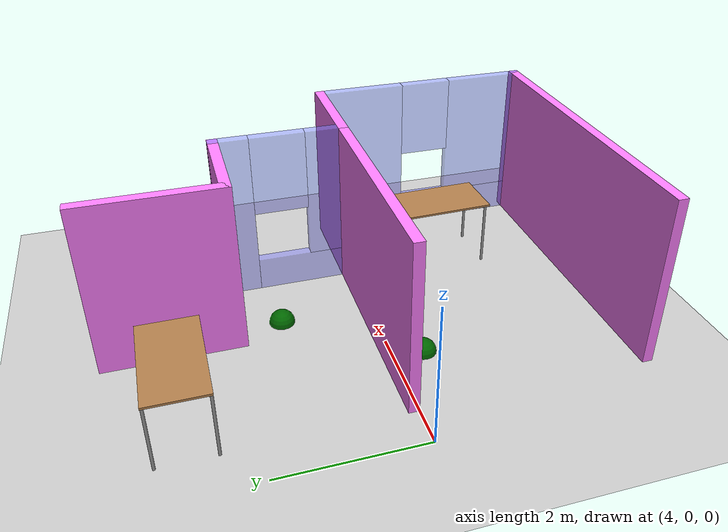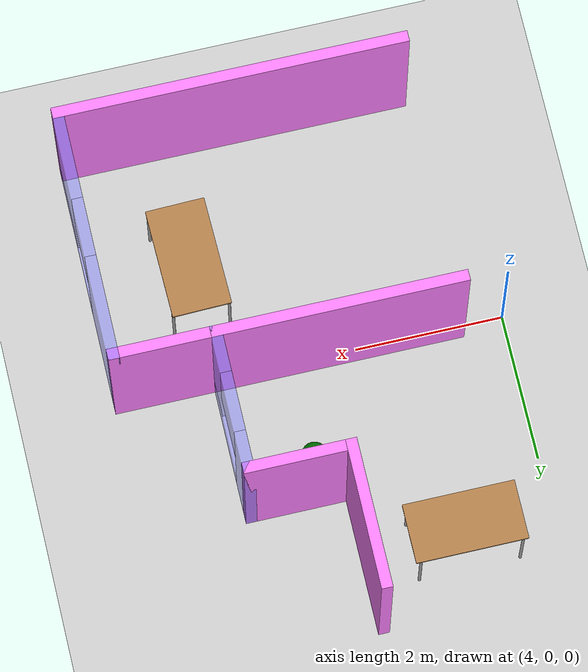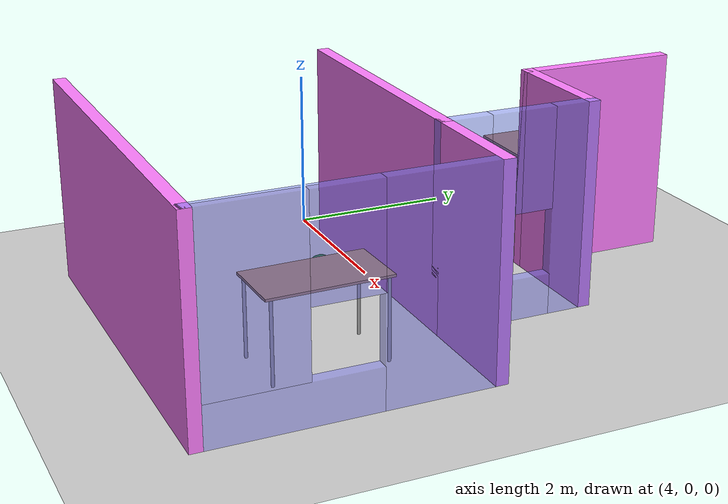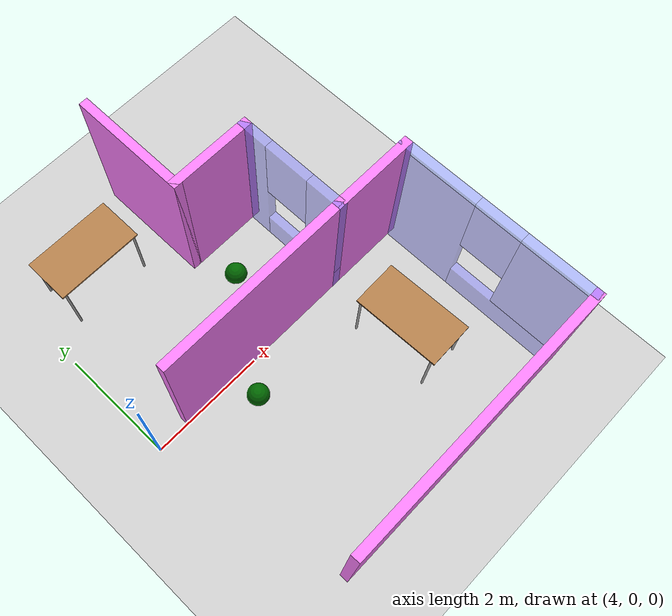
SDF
<sdf version="1.6">
 <world name="default">
  <model name="ground_plane">
   <static>1</static>
   <link name="link">
    <collision name="collision">
     <geometry><plane><normal>0 0 1</normal><size>100 100</size></plane></geometry>
     <surface>
      <contact><collide_bitmask>65535</collide_bitmask></contact>
      <friction><ode><mu>100</mu><mu2>50</mu2></ode></friction>
     </surface>
    </collision>
    <visual name="visual">
     <cast_shadows>0</cast_shadows>
     <geometry><plane><normal>0 0 1</normal><size>100 100</size></plane></geometry>
     <material>
      <script><uri>file://media/materials/scripts/gazebo.material</uri><name>Gazebo/Grey</name></script>
     </material>
    </visual>
   </link>
  </model>
  <model name="table">
   <static>1</static>
   <link name="link">
    <collision name="surface">
     <pose>0 0 1 0 -0 0</pose>
     <geometry><box><size>1.5 0.8 0.03</size></box></geometry>
     <surface><friction><ode><mu>0.6</mu><mu2>0.6</mu2></ode></friction></surface>
    </collision>
    <visual name="visual1">
     <pose>0 0 1 0 -0 0</pose>
     <geometry><box><size>1.5 0.8 0.03</size></box></geometry>
     <material>
      <script><uri>file://media/materials/scripts/gazebo.material</uri><name>Gazebo/Wood</name></script>
     </material>
    </visual>
    <collision name="front_left_leg">
     <pose>0.68 0.38 0.5 0 -0 0</pose>
     <geometry><cylinder><radius>0.02</radius><length>1</length></cylinder></geometry>
    </collision>
    <visual name="front_left_leg">
     <pose>0.68 0.38 0.5 0 -0 0</pose>
     <geometry><cylinder><radius>0.02</radius><length>1</length></cylinder></geometry>
     <material>
      <script><uri>file://media/materials/scripts/gazebo.material</uri><name>Gazebo/Grey</name></script>
     </material>
    </visual>
    <collision name="front_right_leg">
     <pose>0.68 -0.38 0.5 0 -0 0</pose>
     <geometry><cylinder><radius>0.02</radius><length>1</length></cylinder></geometry>
    </collision>
    <visual name="front_right_leg">
     <pose>0.68 -0.38 0.5 0 -0 0</pose>
     <geometry><cylinder><radius>0.02</radius><length>1</length></cylinder></geometry>
     <material>
      <script><uri>file://media/materials/scripts/gazebo.material</uri><name>Gazebo/Grey</name></script>
     </material>
    </visual>
    <collision name="back_right_leg">
     <pose>-0.68 -0.38 0.5 0 -0 0</pose>
     <geometry><cylinder><radius>0.02</radius><length>1</length></cylinder></geometry>
    </collision>
    <visual name="back_right_leg">
     <pose>-0.68 -0.38 0.5 0 -0 0</pose>
     <geometry><cylinder><radius>0.02</radius><length>1</length></cylinder></geometry>
     <material>
      <script><uri>file://media/materials/scripts/gazebo.material</uri><name>Gazebo/Grey</name></script>
     </material>
    </visual>
    <collision name="back_left_leg">
     <pose>-0.68 0.38 0.5 0 -0 0</pose>
     <geometry><cylinder><radius>0.02</radius><length>1</length></cylinder></geometry>
    </collision>
    <visual name="back_left_leg">
     <pose>-0.68 0.38 0.5 0 -0 0</pose>
     <geometry><cylinder><radius>0.02</radius><length>1</length></cylinder></geometry>
     <material>
      <script><uri>file://media/materials/scripts/gazebo.material</uri><name>Gazebo/Grey</name></script>
     </material>
    </visual>
   </link>
   <pose>5.23184 2.86923 0 0 -0 0</pose>
  </model>
  <model name="table_1">
   <static>1</static>
   <link name="link">
    <collision name="surface">
     <pose>0 0 1 0 -0 0</pose>
     <geometry><box><size>1.5 0.8 0.03</size></box></geometry>
     <surface><friction><ode><mu>0.6</mu><mu2>0.6</mu2></ode></friction></surface>
    </collision>
    <visual name="visual1">
     <pose>0 0 1 0 -0 0</pose>
     <geometry><box><size>1.5 0.8 0.03</size></box></geometry>
     <material>
      <script><uri>file://media/materials/scripts/gazebo.material</uri><name>Gazebo/Wood</name></script>
     </material>
    </visual>
    <collision name="front_left_leg">
     <pose>0.68 0.38 0.5 0 -0 0</pose>
     <geometry><cylinder><radius>0.02</radius><length>1</length></cylinder></geometry>
    </collision>
    <visual name="front_left_leg">
     <pose>0.68 0.38 0.5 0 -0 0</pose>
     <geometry><cylinder><radius>0.02</radius><length>1</length></cylinder></geometry>
     <material>
      <script><uri>file://media/materials/scripts/gazebo.material</uri><name>Gazebo/Grey</name></script>
     </material>
    </visual>
    <collision name="front_right_leg">
     <pose>0.68 -0.38 0.5 0 -0 0</pose>
     <geometry><cylinder><radius>0.02</radius><length>1</length></cylinder></geometry>
    </collision>
    <visual name="front_right_leg">
     <pose>0.68 -0.38 0.5 0 -0 0</pose>
     <geometry><cylinder><radius>0.02</radius><length>1</length></cylinder></geometry>
     <material>
      <script><uri>file://media/materials/scripts/gazebo.material</uri><name>Gazebo/Grey</name></script>
     </material>
    </visual>
    <collision name="back_right_leg">
     <pose>-0.68 -0.38 0.5 0 -0 0</pose>
     <geometry><cylinder><radius>0.02</radius><length>1</length></cylinder></geometry>
    </collision>
    <visual name="back_right_leg">
     <pose>-0.68 -0.38 0.5 0 -0 0</pose>
     <geometry><cylinder><radius>0.02</radius><length>1</length></cylinder></geometry>
     <material>
      <script><uri>file://media/materials/scripts/gazebo.material</uri><name>Gazebo/Grey</name></script>
     </material>
    </visual>
    <collision name="back_left_leg">
     <pose>-0.68 0.38 0.5 0 -0 0</pose>
     <geometry><cylinder><radius>0.02</radius><length>1</length></cylinder></geometry>
    </collision>
    <visual name="back_left_leg">
     <pose>-0.68 0.38 0.5 0 -0 0</pose>
     <geometry><cylinder><radius>0.02</radius><length>1</length></cylinder></geometry>
     <material>
      <script><uri>file://media/materials/scripts/gazebo.material</uri><name>Gazebo/Grey</name></script>
     </material>
    </visual>
   </link>
   <pose>7.93641 -1.44569 0 0 0 -1.54576</pose>
  </model>
  <model name="house">
   <link name="Wall_25">
    <pose>6.17671 0.655851 0 0 -0 0</pose>
    <inertial>
     <mass>1</mass>
     <inertia><ixx>1</ixx><ixy>0</ixy><ixz>0</ixz><iyy>1</iyy><iyz>0</iyz><izz>1</izz></inertia>
    </inertial>
    <visual name="Wall_25_Visual">
     <pose>0 0 1.25 0 -0 0</pose>
     <geometry><box><size>3.4 0.15 2.5</size></box></geometry>
     <material>
      <script><uri>file://media/materials/scripts/gazebo.material</uri><name>Gazebo/Grey</name></script>
      <ambient>1 0.5 1 1</ambient>
      <shader type="pixel"><normal_map>__default__</normal_map></shader>
      <diffuse>0.7 0.7 0.7 1</diffuse>
      <specular>0.01 0.01 0.01 1</specular>
      <emissive>0 0 0 1</emissive>
     </material>
     <meta><layer>0</layer></meta>
    </visual>
    <collision name="Wall_25_Collision">
     <pose>0 0 1.25 0 -0 0</pose>
     <geometry><box><size>3.4 0.15 2.5</size></box></geometry>
     <surface>
      <friction>
       <ode><mu>1</mu><mu2>1</mu2><fdir1>0 0 0</fdir1><slip1>0</slip1><slip2>0</slip2></ode>
       <torsional>
        <coefficient>1</coefficient>
        <patch_radius>0</patch_radius>
        <surface_radius>0</surface_radius>
        <use_patch_radius>1</use_patch_radius>
        <ode><slip>0</slip></ode>
       </torsional>
      </friction>
      <bounce><restitution_coefficient>0</restitution_coefficient><threshold>1e+06</threshold></bounce>
      <contact>
       <collide_without_contact>0</collide_without_contact>
       <collide_without_contact_bitmask>1</collide_without_contact_bitmask>
       <collide_bitmask>1</collide_bitmask>
       <ode>
        <soft_cfm>0</soft_cfm>
        <soft_erp>0.2</soft_erp>
        <kp>1e+13</kp>
        <kd>1</kd>
        <max_vel>0.01</max_vel>
        <min_depth>0</min_depth>
       </ode>
       <bullet>
        <split_impulse>1</split_impulse>
        <split_impulse_penetration_threshold>-0.01</split_impulse_penetration_threshold>
        <soft_cfm>0</soft_cfm>
        <soft_erp>0.2</soft_erp>
        <kp>1e+13</kp>
        <kd>1</kd>
       </bullet>
      </contact>
     </surface>
    </collision>
   </link>
   <link name="Wall_4">
    <pose>6.45171 3.43085 0 0 0 -1.5708</pose>
    <inertial>
     <mass>1</mass>
     <inertia><ixx>1</ixx><ixy>0</ixy><ixz>0</ixz><iyy>1</iyy><iyz>0</iyz><izz>1</izz></inertia>
    </inertial>
    <visual name="Wall_4_Visual">
     <pose>0 0 1.25 0 -0 0</pose>
     <geometry><box><size>2 0.15 2.5</size></box></geometry>
     <material>
      <script><uri>file://media/materials/scripts/gazebo.material</uri><name>Gazebo/Grey</name></script>
      <ambient>1 0.5 1 1</ambient>
      <shader type="pixel"><normal_map>__default__</normal_map></shader>
      <diffuse>0.7 0.7 0.7 1</diffuse>
      <specular>0.01 0.01 0.01 1</specular>
      <emissive>0 0 0 1</emissive>
     </material>
     <meta><layer>0</layer></meta>
    </visual>
    <collision name="Wall_4_Collision">
     <pose>0 0 1.25 0 -0 0</pose>
     <geometry><box><size>2 0.15 2.5</size></box></geometry>
     <surface>
      <friction>
       <ode><mu>1</mu><mu2>1</mu2><fdir1>0 0 0</fdir1><slip1>0</slip1><slip2>0</slip2></ode>
       <torsional>
        <coefficient>1</coefficient>
        <patch_radius>0</patch_radius>
        <surface_radius>0</surface_radius>
        <use_patch_radius>1</use_patch_radius>
        <ode><slip>0</slip></ode>
       </torsional>
      </friction>
      <bounce><restitution_coefficient>0</restitution_coefficient><threshold>1e+06</threshold></bounce>
      <contact>
       <collide_without_contact>0</collide_without_contact>
       <collide_without_contact_bitmask>1</collide_without_contact_bitmask>
       <collide_bitmask>1</collide_bitmask>
       <ode>
        <soft_cfm>0</soft_cfm>
        <soft_erp>0.2</soft_erp>
        <kp>1e+13</kp>
        <kd>1</kd>
        <max_vel>0.01</max_vel>
        <min_depth>0</min_depth>
       </ode>
       <bullet>
        <split_impulse>1</split_impulse>
        <split_impulse_penetration_threshold>-0.01</split_impulse_penetration_threshold>
        <soft_cfm>0</soft_cfm>
        <soft_erp>0.2</soft_erp>
        <kp>1e+13</kp>
        <kd>1</kd>
       </bullet>
      </contact>
     </surface>
    </collision>
   </link>
   <link name="Wall_5">
    <pose>7.12671 2.50585 0 0 -0 0</pose>
    <inertial>
     <mass>1</mass>
     <inertia><ixx>1</ixx><ixy>0</ixy><ixz>0</ixz><iyy>1</iyy><iyz>0</iyz><izz>1</izz></inertia>
    </inertial>
    <visual name="Wall_5_Visual">
     <pose>0 0 1.25 0 -0 0</pose>
     <geometry><box><size>1.5 0.15 2.5</size></box></geometry>
     <material>
      <script><uri>file://media/materials/scripts/gazebo.material</uri><name>Gazebo/Grey</name></script>
      <ambient>1 0.5 1 1</ambient>
      <shader type="pixel"><normal_map>__default__</normal_map></shader>
      <diffuse>0.7 0.7 0.7 1</diffuse>
      <specular>0.01 0.01 0.01 1</specular>
      <emissive>0 0 0 1</emissive>
     </material>
     <meta><layer>0</layer></meta>
    </visual>
    <collision name="Wall_5_Collision">
     <pose>0 0 1.25 0 -0 0</pose>
     <geometry><box><size>1.5 0.15 2.5</size></box></geometry>
     <surface>
      <friction>
       <ode><mu>1</mu><mu2>1</mu2><fdir1>0 0 0</fdir1><slip1>0</slip1><slip2>0</slip2></ode>
       <torsional>
        <coefficient>1</coefficient>
        <patch_radius>0</patch_radius>
        <surface_radius>0</surface_radius>
        <use_patch_radius>1</use_patch_radius>
        <ode><slip>0</slip></ode>
       </torsional>
      </friction>
      <bounce><restitution_coefficient>0</restitution_coefficient><threshold>1e+06</threshold></bounce>
      <contact>
       <collide_without_contact>0</collide_without_contact>
       <collide_without_contact_bitmask>1</collide_without_contact_bitmask>
       <collide_bitmask>1</collide_bitmask>
       <ode>
        <soft_cfm>0</soft_cfm>
        <soft_erp>0.2</soft_erp>
        <kp>1e+13</kp>
        <kd>1</kd>
        <max_vel>0.01</max_vel>
        <min_depth>0</min_depth>
       </ode>
       <bullet>
        <split_impulse>1</split_impulse>
        <split_impulse_penetration_threshold>-0.01</split_impulse_penetration_threshold>
        <soft_cfm>0</soft_cfm>
        <soft_erp>0.2</soft_erp>
        <kp>1e+13</kp>
        <kd>1</kd>
       </bullet>
      </contact>
     </surface>
    </collision>
   </link>
   <link name="Wall_6">
    <pose>7.80171 1.58085 0 0 0 -1.5708</pose>
    <inertial>
     <mass>1</mass>
     <inertia><ixx>1</ixx><ixy>0</ixy><ixz>0</ixz><iyy>1</iyy><iyz>0</iyz><izz>1</izz></inertia>
    </inertial>
    <visual name="Wall_6_Visual_0">
     <pose>-0.718403 0 1.25 0 -0 0</pose>
     <geometry><box><size>0.563194 0.15 2.5</size></box></geometry>
     <material>
      <script><uri>file://media/materials/scripts/gazebo.material</uri><name>Gazebo/Grey</name></script>
      <ambient>0.5 0.5 1 0.5</ambient>
      <shader type="pixel"><normal_map>__default__</normal_map></shader>
      <diffuse>0.7 0.7 0.7 1</diffuse>
      <specular>0.01 0.01 0.01 1</specular>
      <emissive>0 0 0 1</emissive>
     </material>
     <meta><layer>0</layer></meta>
    </visual>
    <visual name="Wall_6_Visual_1">
     <pose>0.281597 0 0.25 0 -0 0</pose>
     <geometry><box><size>1.43681 0.15 0.5</size></box></geometry>
     <material>
      <script><uri>file://media/materials/scripts/gazebo.material</uri><name>Gazebo/Grey</name></script>
      <ambient>0.5 0.5 1 0.5</ambient>
      <shader type="pixel"><normal_map>__default__</normal_map></shader>
      <diffuse>0.7 0.7 0.7 1</diffuse>
      <specular>0.01 0.01 0.01 1</specular>
      <emissive>0 0 0 1</emissive>
     </material>
     <meta><layer>0</layer></meta>
    </visual>
    <visual name="Wall_6_Visual_2">
     <pose>0.681597 0 1.5 0 -0 0</pose>
     <geometry><box><size>0.636806 0.15 2</size></box></geometry>
     <material>
      <script><uri>file://media/materials/scripts/gazebo.material</uri><name>Gazebo/Grey</name></script>
      <ambient>0.5 0.5 1 0.5</ambient>
      <shader type="pixel"><normal_map>__default__</normal_map></shader>
      <diffuse>0.7 0.7 0.7 1</diffuse>
      <specular>0.01 0.01 0.01 1</specular>
      <emissive>0 0 0 1</emissive>
     </material>
     <meta><layer>0</layer></meta>
    </visual>
    <visual name="Wall_6_Visual_3">
     <pose>-0.036806 0 1.9 0 -0 0</pose>
     <geometry><box><size>0.8 0.15 1.2</size></box></geometry>
     <material>
      <script><uri>file://media/materials/scripts/gazebo.material</uri><name>Gazebo/Grey</name></script>
      <ambient>0.5 0.5 1 0.5</ambient>
      <shader type="pixel"><normal_map>__default__</normal_map></shader>
      <diffuse>0.7 0.7 0.7 1</diffuse>
      <specular>0.01 0.01 0.01 1</specular>
      <emissive>0 0 0 1</emissive>
     </material>
     <meta><layer>0</layer></meta>
    </visual>
    <collision name="Wall_6_Collision_3">
     <pose>-0.036806 0 1.9 0 -0 0</pose>
     <geometry><box><size>0.8 0.15 1.2</size></box></geometry>
     <surface>
      <friction>
       <ode><mu>1</mu><mu2>1</mu2><fdir1>0 0 0</fdir1><slip1>0</slip1><slip2>0</slip2></ode>
       <torsional>
        <coefficient>1</coefficient>
        <patch_radius>0</patch_radius>
        <surface_radius>0</surface_radius>
        <use_patch_radius>1</use_patch_radius>
        <ode><slip>0</slip></ode>
       </torsional>
      </friction>
      <bounce><restitution_coefficient>0</restitution_coefficient><threshold>1e+06</threshold></bounce>
      <contact>
       <collide_without_contact>0</collide_without_contact>
       <collide_without_contact_bitmask>1</collide_without_contact_bitmask>
       <collide_bitmask>1</collide_bitmask>
       <ode>
        <soft_cfm>0</soft_cfm>
        <soft_erp>0.2</soft_erp>
        <kp>1e+13</kp>
        <kd>1</kd>
        <max_vel>0.01</max_vel>
        <min_depth>0</min_depth>
       </ode>
       <bullet>
        <split_impulse>1</split_impulse>
        <split_impulse_penetration_threshold>-0.01</split_impulse_penetration_threshold>
        <soft_cfm>0</soft_cfm>
        <soft_erp>0.2</soft_erp>
        <kp>1e+13</kp>
        <kd>1</kd>
       </bullet>
      </contact>
     </surface>
    </collision>
    <collision name="Wall_6_Collision_0">
     <pose>-0.718403 0 1.25 0 -0 0</pose>
     <geometry><box><size>0.563194 0.15 2.5</size></box></geometry>
     <surface>
      <friction>
       <ode><mu>1</mu><mu2>1</mu2><fdir1>0 0 0</fdir1><slip1>0</slip1><slip2>0</slip2></ode>
       <torsional>
        <coefficient>1</coefficient>
        <patch_radius>0</patch_radius>
        <surface_radius>0</surface_radius>
        <use_patch_radius>1</use_patch_radius>
        <ode><slip>0</slip></ode>
       </torsional>
      </friction>
      <bounce><restitution_coefficient>0</restitution_coefficient><threshold>1e+06</threshold></bounce>
      <contact>
       <collide_without_contact>0</collide_without_contact>
       <collide_without_contact_bitmask>1</collide_without_contact_bitmask>
       <collide_bitmask>1</collide_bitmask>
       <ode>
        <soft_cfm>0</soft_cfm>
        <soft_erp>0.2</soft_erp>
        <kp>1e+13</kp>
        <kd>1</kd>
        <max_vel>0.01</max_vel>
        <min_depth>0</min_depth>
       </ode>
       <bullet>
        <split_impulse>1</split_impulse>
        <split_impulse_penetration_threshold>-0.01</split_impulse_penetration_threshold>
        <soft_cfm>0</soft_cfm>
        <soft_erp>0.2</soft_erp>
        <kp>1e+13</kp>
        <kd>1</kd>
       </bullet>
      </contact>
     </surface>
    </collision>
    <collision name="Wall_6_Collision_1">
     <pose>0.281597 0 0.25 0 -0 0</pose>
     <geometry><box><size>1.43681 0.15 0.5</size></box></geometry>
     <surface>
      <friction>
       <ode><mu>1</mu><mu2>1</mu2><fdir1>0 0 0</fdir1><slip1>0</slip1><slip2>0</slip2></ode>
       <torsional>
        <coefficient>1</coefficient>
        <patch_radius>0</patch_radius>
        <surface_radius>0</surface_radius>
        <use_patch_radius>1</use_patch_radius>
        <ode><slip>0</slip></ode>
       </torsional>
      </friction>
      <bounce><restitution_coefficient>0</restitution_coefficient><threshold>1e+06</threshold></bounce>
      <contact>
       <collide_without_contact>0</collide_without_contact>
       <collide_without_contact_bitmask>1</collide_without_contact_bitmask>
       <collide_bitmask>1</collide_bitmask>
       <ode>
        <soft_cfm>0</soft_cfm>
        <soft_erp>0.2</soft_erp>
        <kp>1e+13</kp>
        <kd>1</kd>
        <max_vel>0.01</max_vel>
        <min_depth>0</min_depth>
       </ode>
       <bullet>
        <split_impulse>1</split_impulse>
        <split_impulse_penetration_threshold>-0.01</split_impulse_penetration_threshold>
        <soft_cfm>0</soft_cfm>
        <soft_erp>0.2</soft_erp>
        <kp>1e+13</kp>
        <kd>1</kd>
       </bullet>
      </contact>
     </surface>
    </collision>
    <collision name="Wall_6_Collision_2">
     <pose>0.681597 0 1.5 0 -0 0</pose>
     <geometry><box><size>0.636806 0.15 2</size></box></geometry>
     <surface>
      <friction>
       <ode><mu>1</mu><mu2>1</mu2><fdir1>0 0 0</fdir1><slip1>0</slip1><slip2>0</slip2></ode>
       <torsional>
        <coefficient>1</coefficient>
        <patch_radius>0</patch_radius>
        <surface_radius>0</surface_radius>
        <use_patch_radius>1</use_patch_radius>
        <ode><slip>0</slip></ode>
       </torsional>
      </friction>
      <bounce><restitution_coefficient>0</restitution_coefficient><threshold>1e+06</threshold></bounce>
      <contact>
       <collide_without_contact>0</collide_without_contact>
       <collide_without_contact_bitmask>1</collide_without_contact_bitmask>
       <collide_bitmask>1</collide_bitmask>
       <ode>
        <soft_cfm>0</soft_cfm>
        <soft_erp>0.2</soft_erp>
        <kp>1e+13</kp>
        <kd>1</kd>
        <max_vel>0.01</max_vel>
        <min_depth>0</min_depth>
       </ode>
       <bullet>
        <split_impulse>1</split_impulse>
        <split_impulse_penetration_threshold>-0.01</split_impulse_penetration_threshold>
        <soft_cfm>0</soft_cfm>
        <soft_erp>0.2</soft_erp>
        <kp>1e+13</kp>
        <kd>1</kd>
       </bullet>
      </contact>
     </surface>
    </collision>
   </link>
   <link name="Wall_7">
    <pose>8.47671 0.655851 0 0 -0 0</pose>
    <inertial>
     <mass>1</mass>
     <inertia><ixx>1</ixx><ixy>0</ixy><ixz>0</ixz><iyy>1</iyy><iyz>0</iyz><izz>1</izz></inertia>
    </inertial>
    <visual name="Wall_7_Visual">
     <pose>0 0 1.25 0 -0 0</pose>
     <geometry><box><size>1.5 0.15 2.5</size></box></geometry>
     <material>
      <script><uri>file://media/materials/scripts/gazebo.material</uri><name>Gazebo/Grey</name></script>
      <ambient>1 0.5 1 1</ambient>
      <shader type="pixel"><normal_map>__default__</normal_map></shader>
      <diffuse>0.7 0.7 0.7 1</diffuse>
      <specular>0.01 0.01 0.01 1</specular>
      <emissive>0 0 0 1</emissive>
     </material>
     <meta><layer>0</layer></meta>
    </visual>
    <collision name="Wall_7_Collision">
     <pose>0 0 1.25 0 -0 0</pose>
     <geometry><box><size>1.5 0.15 2.5</size></box></geometry>
     <surface>
      <friction>
       <ode><mu>1</mu><mu2>1</mu2><fdir1>0 0 0</fdir1><slip1>0</slip1><slip2>0</slip2></ode>
       <torsional>
        <coefficient>1</coefficient>
        <patch_radius>0</patch_radius>
        <surface_radius>0</surface_radius>
        <use_patch_radius>1</use_patch_radius>
        <ode><slip>0</slip></ode>
       </torsional>
      </friction>
      <bounce><restitution_coefficient>0</restitution_coefficient><threshold>1e+06</threshold></bounce>
      <contact>
       <collide_without_contact>0</collide_without_contact>
       <collide_without_contact_bitmask>1</collide_without_contact_bitmask>
       <collide_bitmask>1</collide_bitmask>
       <ode>
        <soft_cfm>0</soft_cfm>
        <soft_erp>0.2</soft_erp>
        <kp>1e+13</kp>
        <kd>1</kd>
        <max_vel>0.01</max_vel>
        <min_depth>0</min_depth>
       </ode>
       <bullet>
        <split_impulse>1</split_impulse>
        <split_impulse_penetration_threshold>-0.01</split_impulse_penetration_threshold>
        <soft_cfm>0</soft_cfm>
        <soft_erp>0.2</soft_erp>
        <kp>1e+13</kp>
        <kd>1</kd>
       </bullet>
      </contact>
     </surface>
    </collision>
   </link>
   <link name="Wall_8">
    <pose>9.15171 -1.01915 0 0 0 -1.5708</pose>
    <inertial>
     <mass>1</mass>
     <inertia><ixx>1</ixx><ixy>0</ixy><ixz>0</ixz><iyy>1</iyy><iyz>0</iyz><izz>1</izz></inertia>
    </inertial>
    <visual name="Wall_8_Visual_0">
     <pose>-1.0409 0 1.25 0 -0 0</pose>
     <geometry><box><size>1.4182 0.15 2.5</size></box></geometry>
     <material>
      <script><uri>file://media/materials/scripts/gazebo.material</uri><name>Gazebo/Grey</name></script>
      <ambient>0.5 0.5 1 0.5</ambient>
      <shader type="pixel"><normal_map>__default__</normal_map></shader>
      <diffuse>0.7 0.7 0.7 1</diffuse>
      <specular>0.01 0.01 0.01 1</specular>
      <emissive>0 0 0 1</emissive>
     </material>
     <meta><layer>0</layer></meta>
    </visual>
    <visual name="Wall_8_Visual_1">
     <pose>0.709101 0 0.25 0 -0 0</pose>
     <geometry><box><size>2.0818 0.15 0.5</size></box></geometry>
     <material>
      <script><uri>file://media/materials/scripts/gazebo.material</uri><name>Gazebo/Grey</name></script>
      <ambient>0.5 0.5 1 0.5</ambient>
      <shader type="pixel"><normal_map>__default__</normal_map></shader>
      <diffuse>0.7 0.7 0.7 1</diffuse>
      <specular>0.01 0.01 0.01 1</specular>
      <emissive>0 0 0 1</emissive>
     </material>
     <meta><layer>0</layer></meta>
    </visual>
    <visual name="Wall_8_Visual_2">
     <pose>1.1091 0 1.5 0 -0 0</pose>
     <geometry><box><size>1.2818 0.15 2</size></box></geometry>
     <material>
      <script><uri>file://media/materials/scripts/gazebo.material</uri><name>Gazebo/Grey</name></script>
      <ambient>0.5 0.5 1 0.5</ambient>
      <shader type="pixel"><normal_map>__default__</normal_map></shader>
      <diffuse>0.7 0.7 0.7 1</diffuse>
      <specular>0.01 0.01 0.01 1</specular>
      <emissive>0 0 0 1</emissive>
     </material>
     <meta><layer>0</layer></meta>
    </visual>
    <visual name="Wall_8_Visual_3">
     <pose>0.068202 0 1.9 0 -0 0</pose>
     <geometry><box><size>0.8 0.15 1.2</size></box></geometry>
     <material>
      <script><uri>file://media/materials/scripts/gazebo.material</uri><name>Gazebo/Grey</name></script>
      <ambient>0.5 0.5 1 0.5</ambient>
      <shader type="pixel"><normal_map>__default__</normal_map></shader>
      <diffuse>0.7 0.7 0.7 1</diffuse>
      <specular>0.01 0.01 0.01 1</specular>
      <emissive>0 0 0 1</emissive>
     </material>
     <meta><layer>0</layer></meta>
    </visual>
    <collision name="Wall_8_Collision_0">
     <pose>-1.0409 0 1.25 0 -0 0</pose>
     <geometry><box><size>1.4182 0.15 2.5</size></box></geometry>
     <surface>
      <friction>
       <ode><mu>1</mu><mu2>1</mu2><fdir1>0 0 0</fdir1><slip1>0</slip1><slip2>0</slip2></ode>
       <torsional>
        <coefficient>1</coefficient>
        <patch_radius>0</patch_radius>
        <surface_radius>0</surface_radius>
        <use_patch_radius>1</use_patch_radius>
        <ode><slip>0</slip></ode>
       </torsional>
      </friction>
      <bounce><restitution_coefficient>0</restitution_coefficient><threshold>1e+06</threshold></bounce>
      <contact>
       <collide_without_contact>0</collide_without_contact>
       <collide_without_contact_bitmask>1</collide_without_contact_bitmask>
       <collide_bitmask>1</collide_bitmask>
       <ode>
        <soft_cfm>0</soft_cfm>
        <soft_erp>0.2</soft_erp>
        <kp>1e+13</kp>
        <kd>1</kd>
        <max_vel>0.01</max_vel>
        <min_depth>0</min_depth>
       </ode>
       <bullet>
        <split_impulse>1</split_impulse>
        <split_impulse_penetration_threshold>-0.01</split_impulse_penetration_threshold>
        <soft_cfm>0</soft_cfm>
        <soft_erp>0.2</soft_erp>
        <kp>1e+13</kp>
        <kd>1</kd>
       </bullet>
      </contact>
     </surface>
    </collision>
    <collision name="Wall_8_Collision_2">
     <pose>1.1091 0 1.5 0 -0 0</pose>
     <geometry><box><size>1.2818 0.15 2</size></box></geometry>
     <surface>
      <friction>
       <ode><mu>1</mu><mu2>1</mu2><fdir1>0 0 0</fdir1><slip1>0</slip1><slip2>0</slip2></ode>
       <torsional>
        <coefficient>1</coefficient>
        <patch_radius>0</patch_radius>
        <surface_radius>0</surface_radius>
        <use_patch_radius>1</use_patch_radius>
        <ode><slip>0</slip></ode>
       </torsional>
      </friction>
      <bounce><restitution_coefficient>0</restitution_coefficient><threshold>1e+06</threshold></bounce>
      <contact>
       <collide_without_contact>0</collide_without_contact>
       <collide_without_contact_bitmask>1</collide_without_contact_bitmask>
       <collide_bitmask>1</collide_bitmask>
       <ode>
        <soft_cfm>0</soft_cfm>
        <soft_erp>0.2</soft_erp>
        <kp>1e+13</kp>
        <kd>1</kd>
        <max_vel>0.01</max_vel>
        <min_depth>0</min_depth>
       </ode>
       <bullet>
        <split_impulse>1</split_impulse>
        <split_impulse_penetration_threshold>-0.01</split_impulse_penetration_threshold>
        <soft_cfm>0</soft_cfm>
        <soft_erp>0.2</soft_erp>
        <kp>1e+13</kp>
        <kd>1</kd>
       </bullet>
      </contact>
     </surface>
    </collision>
    <collision name="Wall_8_Collision_1">
     <pose>0.709101 0 0.25 0 -0 0</pose>
     <geometry><box><size>2.0818 0.15 0.5</size></box></geometry>
     <surface>
      <friction>
       <ode><mu>1</mu><mu2>1</mu2><fdir1>0 0 0</fdir1><slip1>0</slip1><slip2>0</slip2></ode>
       <torsional>
        <coefficient>1</coefficient>
        <patch_radius>0</patch_radius>
        <surface_radius>0</surface_radius>
        <use_patch_radius>1</use_patch_radius>
        <ode><slip>0</slip></ode>
       </torsional>
      </friction>
      <bounce><restitution_coefficient>0</restitution_coefficient><threshold>1e+06</threshold></bounce>
      <contact>
       <collide_without_contact>0</collide_without_contact>
       <collide_without_contact_bitmask>1</collide_without_contact_bitmask>
       <collide_bitmask>1</collide_bitmask>
       <ode>
        <soft_cfm>0</soft_cfm>
        <soft_erp>0.2</soft_erp>
        <kp>1e+13</kp>
        <kd>1</kd>
        <max_vel>0.01</max_vel>
        <min_depth>0</min_depth>
       </ode>
       <bullet>
        <split_impulse>1</split_impulse>
        <split_impulse_penetration_threshold>-0.01</split_impulse_penetration_threshold>
        <soft_cfm>0</soft_cfm>
        <soft_erp>0.2</soft_erp>
        <kp>1e+13</kp>
        <kd>1</kd>
       </bullet>
      </contact>
     </surface>
    </collision>
    <collision name="Wall_8_Collision_3">
     <pose>0.068202 0 1.9 0 -0 0</pose>
     <geometry><box><size>0.8 0.15 1.2</size></box></geometry>
     <surface>
      <friction>
       <ode><mu>1</mu><mu2>1</mu2><fdir1>0 0 0</fdir1><slip1>0</slip1><slip2>0</slip2></ode>
       <torsional>
        <coefficient>1</coefficient>
        <patch_radius>0</patch_radius>
        <surface_radius>0</surface_radius>
        <use_patch_radius>1</use_patch_radius>
        <ode><slip>0</slip></ode>
       </torsional>
      </friction>
      <bounce><restitution_coefficient>0</restitution_coefficient><threshold>1e+06</threshold></bounce>
      <contact>
       <collide_without_contact>0</collide_without_contact>
       <collide_without_contact_bitmask>1</collide_without_contact_bitmask>
       <collide_bitmask>1</collide_bitmask>
       <ode>
        <soft_cfm>0</soft_cfm>
        <soft_erp>0.2</soft_erp>
        <kp>1e+13</kp>
        <kd>1</kd>
        <max_vel>0.01</max_vel>
        <min_depth>0</min_depth>
       </ode>
       <bullet>
        <split_impulse>1</split_impulse>
        <split_impulse_penetration_threshold>-0.01</split_impulse_penetration_threshold>
        <soft_cfm>0</soft_cfm>
        <soft_erp>0.2</soft_erp>
        <kp>1e+13</kp>
        <kd>1</kd>
       </bullet>
      </contact>
     </surface>
    </collision>
   </link>
   <link name="Wall_9">
    <pose>6.85171 -2.69415 0 0 -0 3.14159</pose>
    <inertial>
     <mass>1</mass>
     <inertia><ixx>1</ixx><ixy>0</ixy><ixz>0</ixz><iyy>1</iyy><iyz>0</iyz><izz>1</izz></inertia>
    </inertial>
    <visual name="Wall_9_Visual">
     <pose>0 0 1.25 0 -0 0</pose>
     <geometry><box><size>4.75 0.15 2.5</size></box></geometry>
     <material>
      <script><uri>file://media/materials/scripts/gazebo.material</uri><name>Gazebo/Grey</name></script>
      <ambient>1 0.5 1 1</ambient>
      <shader type="pixel"><normal_map>__default__</normal_map></shader>
      <diffuse>0.7 0.7 0.7 1</diffuse>
      <specular>0.01 0.01 0.01 1</specular>
      <emissive>0 0 0 1</emissive>
     </material>
     <meta><layer>0</layer></meta>
    </visual>
    <collision name="Wall_9_Collision">
     <pose>0 0 1.25 0 -0 0</pose>
     <geometry><box><size>4.75 0.15 2.5</size></box></geometry>
     <surface>
      <friction>
       <ode><mu>1</mu><mu2>1</mu2><fdir1>0 0 0</fdir1><slip1>0</slip1><slip2>0</slip2></ode>
       <torsional>
        <coefficient>1</coefficient>
        <patch_radius>0</patch_radius>
        <surface_radius>0</surface_radius>
        <use_patch_radius>1</use_patch_radius>
        <ode><slip>0</slip></ode>
       </torsional>
      </friction>
      <bounce><restitution_coefficient>0</restitution_coefficient><threshold>1e+06</threshold></bounce>
      <contact>
       <collide_without_contact>0</collide_without_contact>
       <collide_without_contact_bitmask>1</collide_without_contact_bitmask>
       <collide_bitmask>1</collide_bitmask>
       <ode>
        <soft_cfm>0</soft_cfm>
        <soft_erp>0.2</soft_erp>
        <kp>1e+13</kp>
        <kd>1</kd>
        <max_vel>0.01</max_vel>
        <min_depth>0</min_depth>
       </ode>
       <bullet>
        <split_impulse>1</split_impulse>
        <split_impulse_penetration_threshold>-0.01</split_impulse_penetration_threshold>
        <soft_cfm>0</soft_cfm>
        <soft_erp>0.2</soft_erp>
        <kp>1e+13</kp>
        <kd>1</kd>
       </bullet>
      </contact>
     </surface>
    </collision>
   </link>
   <static>1</static>
   <pose>0.07793 -0.58211 0 0 -0 0</pose>
  </model>
  <model name="unit_sphere_0">
   <link name="link">
    <pose>0.120658 -0.279152 0 0 -0 0</pose>
    <inertial>
     <mass>0.0505705</mass>
     <inertia>
      <ixx>0.00069156</ixx>
      <ixy>0</ixy>
      <ixz>0</ixz>
      <iyy>0.00069156</iyy>
      <iyz>0</iyz>
      <izz>0.00069156</izz>
     </inertia>
    </inertial>
    <visual name="visual">
     <geometry><sphere><radius>0.1849</radius></sphere></geometry>
     <material>
      <script><name>Gazebo/Grey</name><uri>file://media/materials/scripts/gazebo.material</uri></script>
      <shader type="pixel"><normal_map>__default__</normal_map></shader>
      <ambient>0 0.4 0 1</ambient>
      <diffuse>0.7 0.7 0.7 1</diffuse>
      <specular>0.01 0.01 0.01 1</specular>
      <emissive>0 0 0 1</emissive>
     </material>
    </visual>
    <collision name="collision">
     <geometry><sphere><radius>0.1849</radius></sphere></geometry>
     <surface>
      <friction>
       <ode><mu>1</mu><mu2>1</mu2><fdir1>0 0 0</fdir1><slip1>0</slip1><slip2>0</slip2></ode>
       <torsional>
        <coefficient>1</coefficient>
        <patch_radius>0</patch_radius>
        <surface_radius>0</surface_radius>
        <use_patch_radius>1</use_patch_radius>
        <ode><slip>0</slip></ode>
       </torsional>
      </friction>
      <bounce><restitution_coefficient>0</restitution_coefficient><threshold>1e+06</threshold></bounce>
      <contact>
       <collide_without_contact>0</collide_without_contact>
       <collide_without_contact_bitmask>1</collide_without_contact_bitmask>
       <collide_bitmask>1</collide_bitmask>
       <ode>
        <soft_cfm>0</soft_cfm>
        <soft_erp>0.2</soft_erp>
        <kp>1e+13</kp>
        <kd>1</kd>
        <max_vel>0.01</max_vel>
        <min_depth>0</min_depth>
       </ode>
       <bullet>
        <split_impulse>1</split_impulse>
        <split_impulse_penetration_threshold>-0.01</split_impulse_penetration_threshold>
        <soft_cfm>0</soft_cfm>
        <soft_erp>0.2</soft_erp>
        <kp>1e+13</kp>
        <kd>1</kd>
       </bullet>
      </contact>
     </surface>
    </collision>
   </link>
   <static>0</static>
   <pose>6.74674 1.57749 0 0 -0 0</pose>
  </model>
  <model name="unit_sphere_1">
   <link name="link">
    <pose>0.120658 -0.279152 0 0 -0 0</pose>
    <inertial>
     <mass>0.0505705</mass>
     <inertia>
      <ixx>0.00069156</ixx>
      <ixy>0</ixy>
      <ixz>0</ixz>
      <iyy>0.00069156</iyy>
      <iyz>0</iyz>
      <izz>0.00069156</izz>
     </inertia>
    </inertial>
    <visual name="visual">
     <geometry><sphere><radius>0.1849</radius></sphere></geometry>
     <material>
      <script><name>Gazebo/Grey</name><uri>file://media/materials/scripts/gazebo.material</uri></script>
      <shader type="pixel"><normal_map>__default__</normal_map></shader>
      <ambient>0 0.4 0 1</ambient>
      <diffuse>0.7 0.7 0.7 1</diffuse>
      <specular>0.01 0.01 0.01 1</specular>
      <emissive>0 0 0 1</emissive>
     </material>
    </visual>
    <collision name="collision">
     <geometry><sphere><radius>0.1849</radius></sphere></geometry>
     <surface>
      <friction>
       <ode><mu>1</mu><mu2>1</mu2><fdir1>0 0 0</fdir1><slip1>0</slip1><slip2>0</slip2></ode>
       <torsional>
        <coefficient>1</coefficient>
        <patch_radius>0</patch_radius>
        <surface_radius>0</surface_radius>
        <use_patch_radius>1</use_patch_radius>
        <ode><slip>0</slip></ode>
       </torsional>
      </friction>
      <bounce><restitution_coefficient>0</restitution_coefficient><threshold>1e+06</threshold></bounce>
      <contact>
       <collide_without_contact>0</collide_without_contact>
       <collide_without_contact_bitmask>1</collide_without_contact_bitmask>
       <collide_bitmask>1</collide_bitmask>
       <ode>
        <soft_cfm>0</soft_cfm>
        <soft_erp>0.2</soft_erp>
        <kp>1e+13</kp>
        <kd>1</kd>
        <max_vel>0.01</max_vel>
        <min_depth>0</min_depth>
       </ode>
       <bullet>
        <split_impulse>1</split_impulse>
        <split_impulse_penetration_threshold>-0.01</split_impulse_penetration_threshold>
        <soft_cfm>0</soft_cfm>
        <soft_erp>0.2</soft_erp>
        <kp>1e+13</kp>
        <kd>1</kd>
       </bullet>
      </contact>
     </surface>
    </collision>
   </link>
   <static>0</static>
   <pose>5.53277 -0.159879 0 0 -0 0</pose>
  </model>
 </world>
</sdf>
